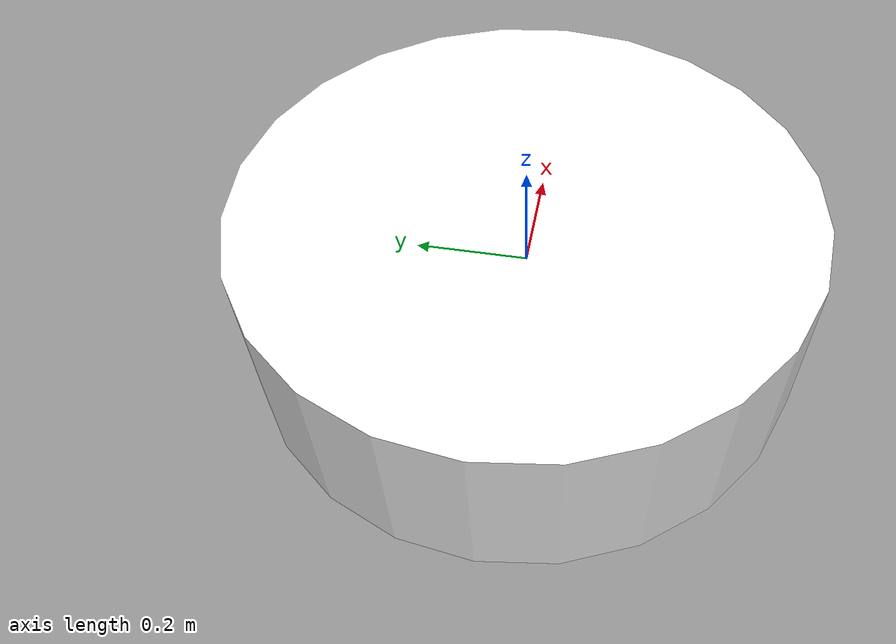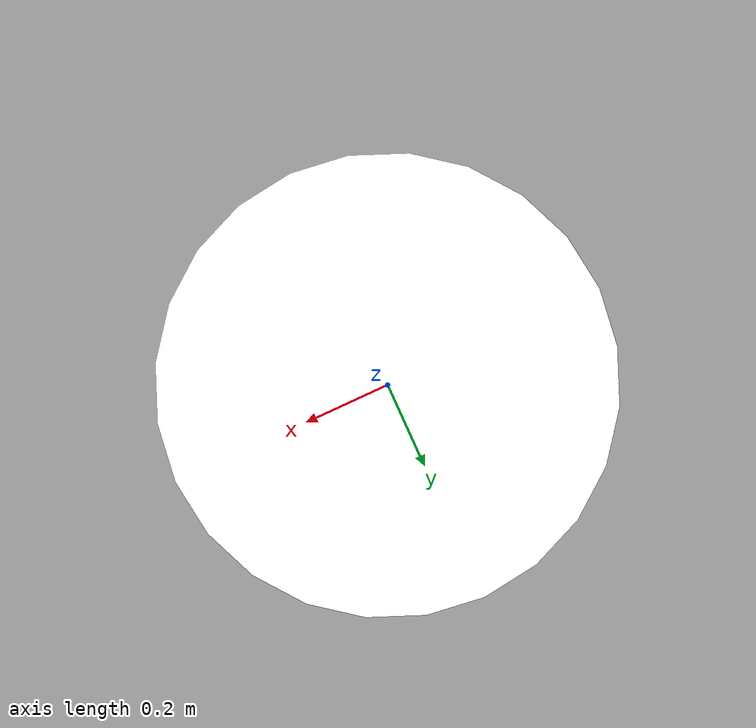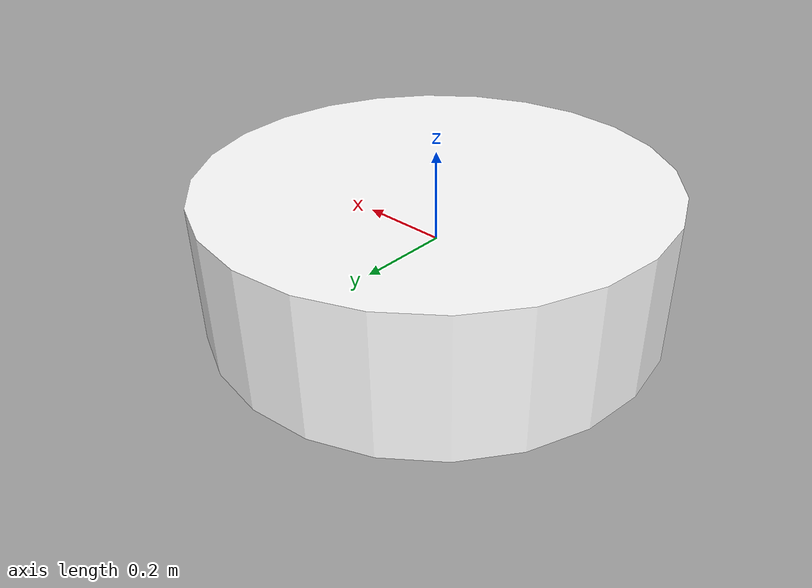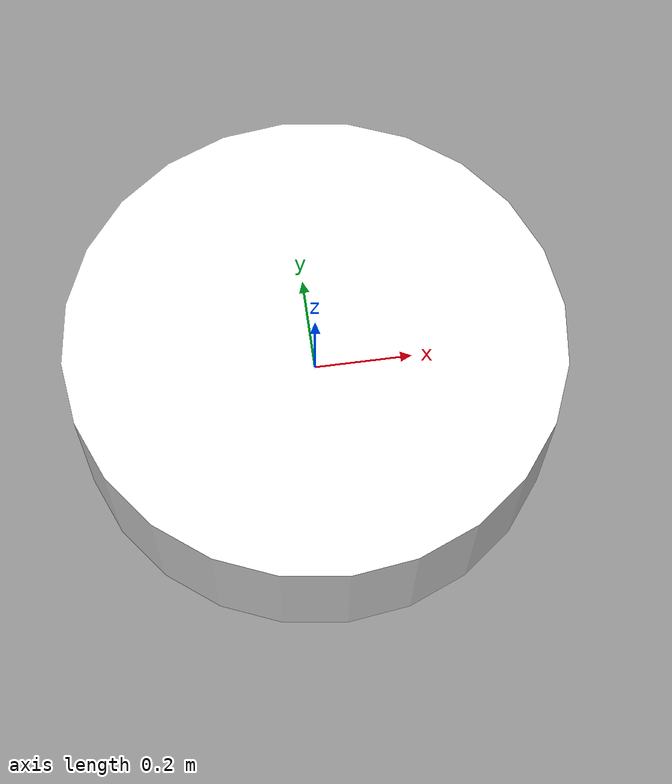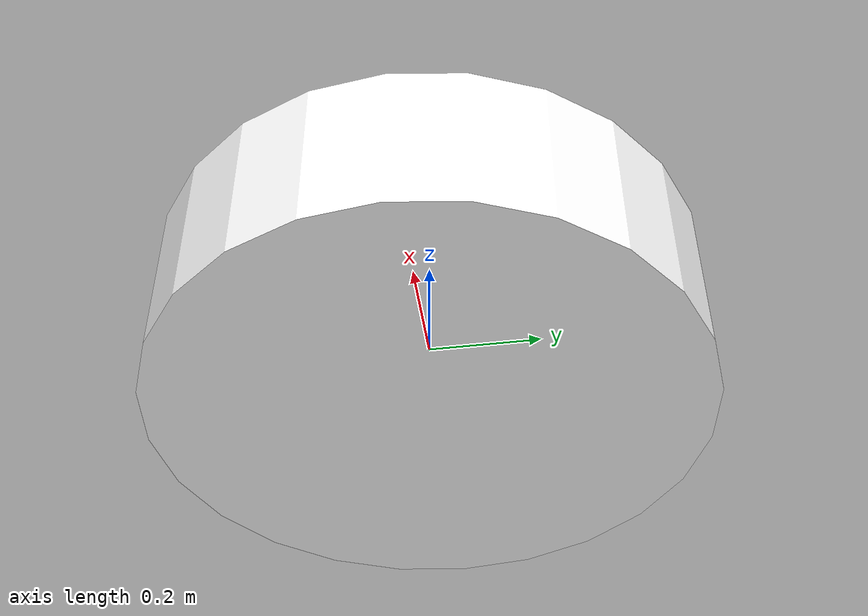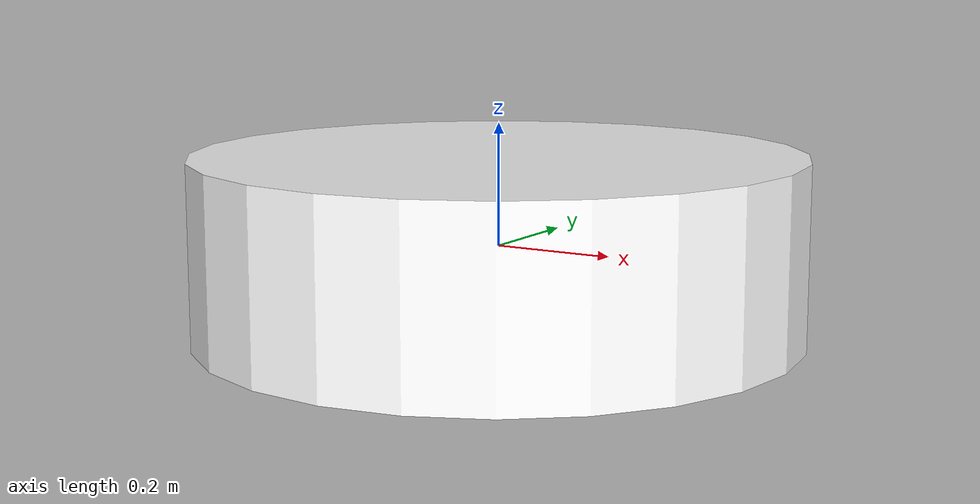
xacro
<?xml version="1.0"?>
<robot xmlns:xacro="http://www.ros.org/wiki/xacro" name="ouzel_raisim">

    <xacro:property name="mass_ouzel" value="5.0"/>
    <xacro:property name="ixx_ouzel" value="0.12"/>
    <xacro:property name="iyy_ouzel" value="0.14"/>
    <xacro:property name="izz_ouzel" value="0.18"/>
    <xacro:property name="radius_ouzel" value="0.5"/>
    <xacro:property name="height_ouzel" value="0.3"/>

    <link name="world"/>
    <link name="odom"/>
    <joint name="odom_to_world" type="fixed">
        <parent link="world"/>
        <child link="odom"/>
    </joint>

    <joint name="odom_to_omav_x" type="prismatic">
        <parent link="odom"/>
        <child link="omav_x"/>
        <origin rpy="0 0 0" xyz="0.0 0.0 0.0"/>
        <axis xyz="1 0 0"/>
        <limit effort="1000.0" velocity="5.0" lower="-100" upper="100" />
    </joint>

    <link name="omav_x"/>

    <joint name="omav_x_to_omav_y" type="prismatic">
        <parent link="omav_x"/>
        <child link="omav_y"/>
        <origin rpy="0 0 0" xyz="0.0 0.0 0.0"/>
        <axis xyz="0 1 0"/>
        <limit effort="1000.0" velocity="5.0" lower="-100" upper="100" />
    </joint>

    <link name="omav_y"/>

    <joint name="omav_y_to_omav_z" type="prismatic">
        <parent link="omav_y"/>
        <child link="omav_z"/>
        <origin rpy="0 0 0" xyz="0.0 0.0 0.0"/>
        <axis xyz="0 0 1"/>
        <limit effort="1000.0" velocity="5.0" lower="-100" upper="100" />
    </joint>

    <link name="omav_z"/>

    <joint name="omav_z_to_omav" type="spherical">
        <parent link="omav_z"/>
        <child link="omav"/>
        <origin rpy="0 0 0" xyz="0.0 0.0 0.0"/>
        <axis xyz="0 1 0"/>
    </joint>

    <link name="omav">
        <inertial>
            <mass value="${mass_ouzel}"/>
            <origin rpy="0 0 0" xyz="0 0 0"/>
            <inertia ixx="${ixx_ouzel}" ixy="0" ixz="0" iyy="${iyy_ouzel}" iyz="0" izz="${izz_ouzel}"/>
        </inertial>
        <collision>
            <origin rpy="0 0 0" xyz="0 0 0.01675"/>
            <geometry>
                <cylinder radius="${radius_ouzel}" length="${height_ouzel}"/>
            </geometry>
        </collision>
        <visual>
            <origin rpy="0 0 0" xyz="0 0 0"/>
            <geometry>
                <cylinder radius="${radius_ouzel}" length="${height_ouzel}"/>
            </geometry>
            <material name="">
                <color rgba="1 1 1 1"/>
            </material>
        </visual>
    </link>
</robot>
